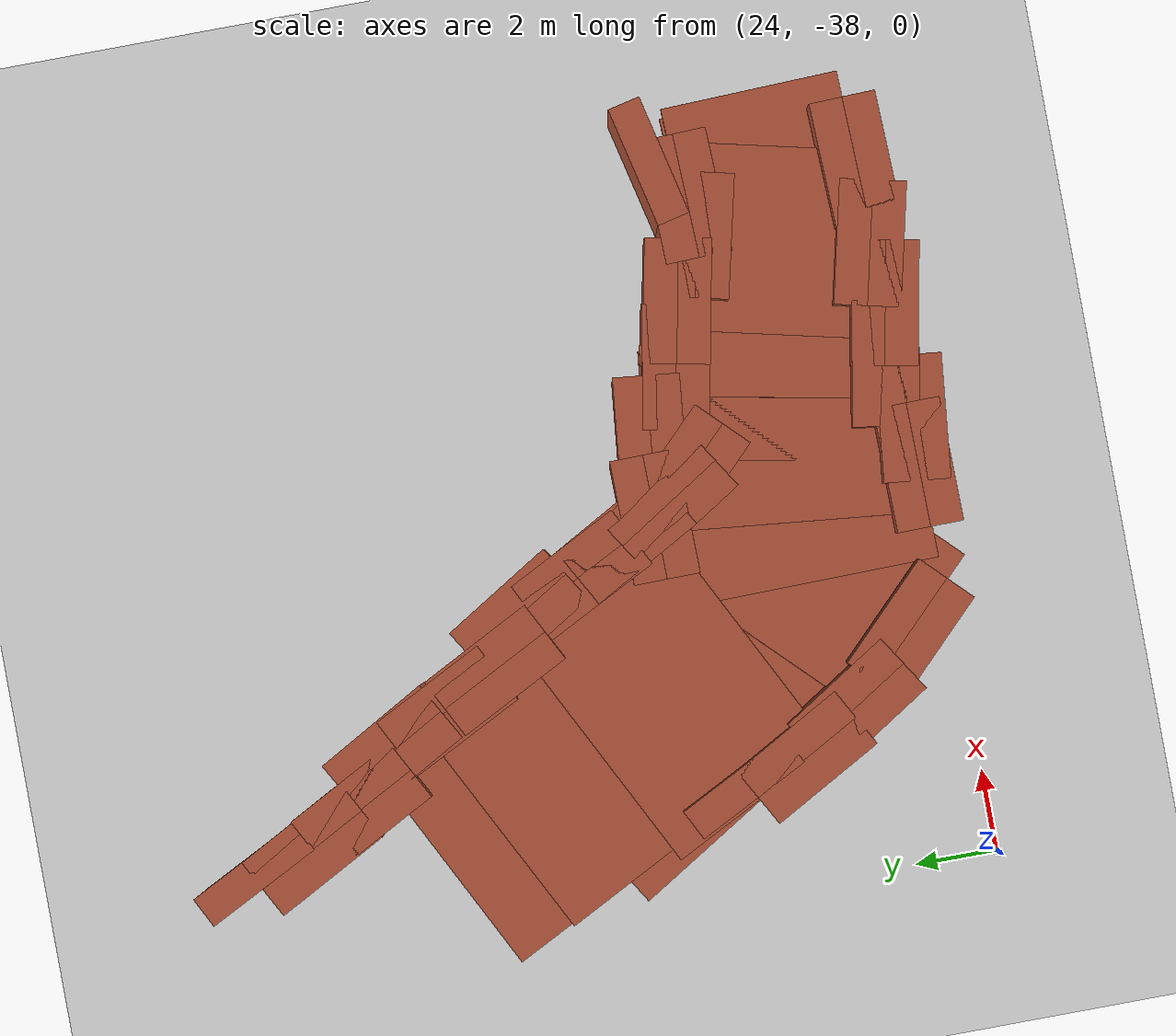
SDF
<sdf version="1.6">
 <world name="procedural_cave_world">
  <include><uri>model://sun</uri></include>
  <include><uri>model://ground_plane</uri></include>
  <model name="procedural_cave">
   <static>true</static>
   <link name="fill_left_23">
    <pose>26.932036066630687 -20.26779416470478 1.5 0 0 -1.1</pose>
    <collision name="collision"><geometry><box><size>3.0 0.8 5.0</size></box></geometry></collision>
    <visual name="visual">
     <geometry><box><size>3.0 0.8 5.0</size></box></geometry>
     <material>
      <script><uri>file://media/materials/scripts/gazebo.material</uri><name>Gazebo/Bricks</name></script>
     </material>
    </visual>
   </link>
   <link name="left_wall_24">
    <pose>26.903741842064512 -21.922781020664537 1.5 0 0 -1.080132154325896</pose>
    <collision name="collision"><geometry><box><size>3.0 0.8 5.0</size></box></geometry></collision>
    <visual name="visual">
     <geometry><box><size>3.0 0.8 5.0</size></box></geometry>
     <material>
      <script><uri>file://media/materials/scripts/gazebo.material</uri><name>Gazebo/Bricks</name></script>
     </material>
    </visual>
   </link>
   <link name="fill_left_24">
    <pose>27.60935791187685 -21.54581157624948 1.5 0 0 -1.080132154325896</pose>
    <collision name="collision"><geometry><box><size>3.0 0.8 5.0</size></box></geometry></collision>
    <visual name="visual">
     <geometry><box><size>3.0 0.8 5.0</size></box></geometry>
     <material>
      <script><uri>file://media/materials/scripts/gazebo.material</uri><name>Gazebo/Bricks</name></script>
     </material>
    </visual>
   </link>
   <link name="left_wall_25">
    <pose>27.63938718959602 -23.235862691191357 1.5 0 0 -1.0826308138403768</pose>
    <collision name="collision"><geometry><box><size>3.0 0.8 5.0</size></box></geometry></collision>
    <visual name="visual">
     <geometry><box><size>3.0 0.8 5.0</size></box></geometry>
     <material>
      <script><uri>file://media/materials/scripts/gazebo.material</uri><name>Gazebo/Bricks</name></script>
     </material>
    </visual>
   </link>
   <link name="fill_left_25">
    <pose>28.345942974032162 -22.860657516014054 1.5 0 0 -1.0826308138403768</pose>
    <collision name="collision"><geometry><box><size>3.0 0.8 5.0</size></box></geometry></collision>
    <visual name="visual">
     <geometry><box><size>3.0 0.8 5.0</size></box></geometry>
     <material>
      <script><uri>file://media/materials/scripts/gazebo.material</uri><name>Gazebo/Bricks</name></script>
     </material>
    </visual>
   </link>
   <link name="left_wall_26">
    <pose>28.8562329743785 -24.21798552494969 1.5 0 0 -1.0581000183696452</pose>
    <collision name="collision"><geometry><box><size>3.0 0.8 5.0</size></box></geometry></collision>
    <visual name="visual">
     <geometry><box><size>3.0 0.8 5.0</size></box></geometry>
     <material>
      <script><uri>file://media/materials/scripts/gazebo.material</uri><name>Gazebo/Bricks</name></script>
     </material>
    </visual>
   </link>
   <link name="fill_left_26">
    <pose>29.553373022664882 -23.82556259866319 1.5 0 0 -1.0581000183696452</pose>
    <collision name="collision"><geometry><box><size>3.0 0.8 5.0</size></box></geometry></collision>
    <visual name="visual">
     <geometry><box><size>3.0 0.8 5.0</size></box></geometry>
     <material>
      <script><uri>file://media/materials/scripts/gazebo.material</uri><name>Gazebo/Bricks</name></script>
     </material>
    </visual>
   </link>
   <link name="left_wall_27">
    <pose>29.5595926995758 -25.660828271721112 1.5 0 0 -1.1</pose>
    <collision name="collision"><geometry><box><size>3.0 0.8 5.0</size></box></geometry></collision>
    <visual name="visual">
     <geometry><box><size>3.0 0.8 5.0</size></box></geometry>
     <material>
      <script><uri>file://media/materials/scripts/gazebo.material</uri><name>Gazebo/Bricks</name></script>
     </material>
    </visual>
   </link>
   <link name="fill_left_27">
    <pose>30.272558587624946 -25.297951374580652 1.5 0 0 -1.1</pose>
    <collision name="collision"><geometry><box><size>3.0 0.8 5.0</size></box></geometry></collision>
    <visual name="visual">
     <geometry><box><size>3.0 0.8 5.0</size></box></geometry>
     <material>
      <script><uri>file://media/materials/scripts/gazebo.material</uri><name>Gazebo/Bricks</name></script>
     </material>
    </visual>
   </link>
   <link name="ceiling_27">
    <pose>27.35402831570251 -26.783390197163865 3.2580101325093014 0 0 -1.1</pose>
    <collision name="collision"><geometry><box><size>4.5 5.949609894876199 0.2</size></box></geometry></collision>
    <visual name="visual">
     <geometry><box><size>4.5 5.949609894876199 0.2</size></box></geometry>
     <material>
      <script><uri>file://media/materials/scripts/gazebo.material</uri><name>Gazebo/Bricks</name></script>
     </material>
    </visual>
   </link>
   <link name="floor_27">
    <pose>27.35402831570251 -26.783390197163865 0.1066784219692117 0 0 -1.1</pose>
    <collision name="collision"><geometry><box><size>4.5 5.949609894876199 0.2</size></box></geometry></collision>
    <visual name="visual">
     <geometry><box><size>4.5 5.949609894876199 0.2</size></box></geometry>
     <material>
      <script><uri>file://media/materials/scripts/gazebo.material</uri><name>Gazebo/Bricks</name></script>
     </material>
    </visual>
   </link>
   <link name="left_wall_28">
    <pose>30.30299372516277 -26.95112771901891 1.5 0 0 -1.0949488383519181</pose>
    <collision name="collision"><geometry><box><size>3.0 0.8 5.0</size></box></geometry></collision>
    <visual name="visual">
     <geometry><box><size>3.0 0.8 5.0</size></box></geometry>
     <material>
      <script><uri>file://media/materials/scripts/gazebo.material</uri><name>Gazebo/Bricks</name></script>
     </material>
    </visual>
   </link>
   <link name="fill_left_28">
    <pose>31.014117575770577 -26.584654160495607 1.5 0 0 -1.0949488383519181</pose>
    <collision name="collision"><geometry><box><size>3.0 0.8 5.0</size></box></geometry></collision>
    <visual name="visual">
     <geometry><box><size>3.0 0.8 5.0</size></box></geometry>
     <material>
      <script><uri>file://media/materials/scripts/gazebo.material</uri><name>Gazebo/Bricks</name></script>
     </material>
    </visual>
   </link>
   <link name="ceiling_28">
    <pose>28.0411662379337 -28.116747417053492 3.314806079505581 0 0 -1.0949488383519181</pose>
    <collision name="collision"><geometry><box><size>4.5 6.089020676881243 0.2</size></box></geometry></collision>
    <visual name="visual">
     <geometry><box><size>4.5 6.089020676881243 0.2</size></box></geometry>
     <material>
      <script><uri>file://media/materials/scripts/gazebo.material</uri><name>Gazebo/Bricks</name></script>
     </material>
    </visual>
   </link>
   <link name="floor_28">
    <pose>28.0411662379337 -28.116747417053492 0.10400705318152703 0 0 -1.0949488383519181</pose>
    <collision name="collision"><geometry><box><size>4.5 6.089020676881243 0.2</size></box></geometry></collision>
    <visual name="visual">
     <geometry><box><size>4.5 6.089020676881243 0.2</size></box></geometry>
     <material>
      <script><uri>file://media/materials/scripts/gazebo.material</uri><name>Gazebo/Bricks</name></script>
     </material>
    </visual>
   </link>
   <link name="left_wall_29">
    <pose>31.478518944601763 -27.76833989277283 1.5 0 0 -1.020678863927704</pose>
    <collision name="collision"><geometry><box><size>3.0 0.8 5.0</size></box></geometry></collision>
    <visual name="visual">
     <geometry><box><size>3.0 0.8 5.0</size></box></geometry>
     <material>
      <script><uri>file://media/materials/scripts/gazebo.material</uri><name>Gazebo/Bricks</name></script>
     </material>
    </visual>
   </link>
   <link name="fill_left_29">
    <pose>32.16048944047195 -27.350110000533434 1.5 0 0 -1.020678863927704</pose>
    <collision name="collision"><geometry><box><size>3.0 0.8 5.0</size></box></geometry></collision>
    <visual name="visual">
     <geometry><box><size>3.0 0.8 5.0</size></box></geometry>
     <material>
      <script><uri>file://media/materials/scripts/gazebo.material</uri><name>Gazebo/Bricks</name></script>
     </material>
    </visual>
   </link>
   <link name="ceiling_29">
    <pose>28.82534728588257 -29.395442096810083 3.314806079505581 0 0 -1.020678863927704</pose>
    <collision name="collision"><geometry><box><size>4.5 7.22471892795607 0.2</size></box></geometry></collision>
    <visual name="visual">
     <geometry><box><size>4.5 7.22471892795607 0.2</size></box></geometry>
     <material>
      <script><uri>file://media/materials/scripts/gazebo.material</uri><name>Gazebo/Bricks</name></script>
     </material>
    </visual>
   </link>
   <link name="floor_29">
    <pose>28.82534728588257 -29.395442096810083 0.10240423190891622 0 0 -1.020678863927704</pose>
    <collision name="collision"><geometry><box><size>4.5 7.22471892795607 0.2</size></box></geometry></collision>
    <visual name="visual">
     <geometry><box><size>4.5 7.22471892795607 0.2</size></box></geometry>
     <material>
      <script><uri>file://media/materials/scripts/gazebo.material</uri><name>Gazebo/Bricks</name></script>
     </material>
    </visual>
   </link>
   <link name="left_wall_30">
    <pose>32.15032416096097 -29.386244894528527 1.5 0 0 -1.1</pose>
    <collision name="collision"><geometry><box><size>3.0 0.8 5.0</size></box></geometry></collision>
    <visual name="visual">
     <geometry><box><size>3.0 0.8 5.0</size></box></geometry>
     <material>
      <script><uri>file://media/materials/scripts/gazebo.material</uri><name>Gazebo/Bricks</name></script>
     </material>
    </visual>
   </link>
   <link name="right_wall_30">
    <pose>26.861158775080902 -32.07826137927595 1.5 0 0 -1.1</pose>
    <collision name="collision"><geometry><box><size>3.0 0.8 5.0</size></box></geometry></collision>
    <visual name="visual">
     <geometry><box><size>3.0 0.8 5.0</size></box></geometry>
     <material>
      <script><uri>file://media/materials/scripts/gazebo.material</uri><name>Gazebo/Bricks</name></script>
     </material>
    </visual>
   </link>
   <link name="fill_left_30">
    <pose>32.86329004901012 -29.023367997388064 1.5 0 0 -1.1</pose>
    <collision name="collision"><geometry><box><size>3.0 0.8 5.0</size></box></geometry></collision>
    <visual name="visual">
     <geometry><box><size>3.0 0.8 5.0</size></box></geometry>
     <material>
      <script><uri>file://media/materials/scripts/gazebo.material</uri><name>Gazebo/Bricks</name></script>
     </material>
    </visual>
   </link>
   <link name="ceiling_30">
    <pose>29.505741468020936 -30.732253136902237 3.348883647703349 0 0 -1.1</pose>
    <collision name="collision"><geometry><box><size>4.5 6.934831356773643 0.2</size></box></geometry></collision>
    <visual name="visual">
     <geometry><box><size>4.5 6.934831356773643 0.2</size></box></geometry>
     <material>
      <script><uri>file://media/materials/scripts/gazebo.material</uri><name>Gazebo/Bricks</name></script>
     </material>
    </visual>
   </link>
   <link name="floor_30">
    <pose>29.505741468020936 -30.732253136902237 0.10144253914534973 0 0 -1.1</pose>
    <collision name="collision"><geometry><box><size>4.5 6.934831356773643 0.2</size></box></geometry></collision>
    <visual name="visual">
     <geometry><box><size>4.5 6.934831356773643 0.2</size></box></geometry>
     <material>
      <script><uri>file://media/materials/scripts/gazebo.material</uri><name>Gazebo/Bricks</name></script>
     </material>
    </visual>
   </link>
   <link name="left_wall_31">
    <pose>32.83592043621047 -30.60323145402377 1.5 0 0 -1.065208005046285</pose>
    <collision name="collision"><geometry><box><size>3.0 0.8 5.0</size></box></geometry></collision>
    <visual name="visual">
     <geometry><box><size>3.0 0.8 5.0</size></box></geometry>
     <material>
      <script><uri>file://media/materials/scripts/gazebo.material</uri><name>Gazebo/Bricks</name></script>
     </material>
    </visual>
   </link>
   <link name="right_wall_31">
    <pose>27.62852922206064 -33.485943885414386 1.5 0 0 -1.065208005046285</pose>
    <collision name="collision"><geometry><box><size>3.0 0.8 5.0</size></box></geometry></collision>
    <visual name="visual">
     <geometry><box><size>3.0 0.8 5.0</size></box></geometry>
     <material>
      <script><uri>file://media/materials/scripts/gazebo.material</uri><name>Gazebo/Bricks</name></script>
     </material>
    </visual>
   </link>
   <link name="fill_left_31">
    <pose>33.535832187046125 -30.215773661429306 1.5 0 0 -1.065208005046285</pose>
    <collision name="collision"><geometry><box><size>3.0 0.8 5.0</size></box></geometry></collision>
    <visual name="visual">
     <geometry><box><size>3.0 0.8 5.0</size></box></geometry>
     <material>
      <script><uri>file://media/materials/scripts/gazebo.material</uri><name>Gazebo/Bricks</name></script>
     </material>
    </visual>
   </link>
   <link name="fill_right_31">
    <pose>26.92861747122499 -33.87340167800885 1.5 0 0 -1.065208005046285</pose>
    <collision name="collision"><geometry><box><size>3.0 0.8 5.0</size></box></geometry></collision>
    <visual name="visual">
     <geometry><box><size>3.0 0.8 5.0</size></box></geometry>
     <material>
      <script><uri>file://media/materials/scripts/gazebo.material</uri><name>Gazebo/Bricks</name></script>
     </material>
    </visual>
   </link>
   <link name="ceiling_31">
    <pose>30.232224829135557 -32.04458766971908 2.045461689374546 0 0 -1.065208005046285</pose>
    <collision name="collision"><geometry><box><size>4.5 6.952054621666277 0.2</size></box></geometry></collision>
    <visual name="visual">
     <geometry><box><size>4.5 6.952054621666277 0.2</size></box></geometry>
     <material>
      <script><uri>file://media/materials/scripts/gazebo.material</uri><name>Gazebo/Bricks</name></script>
     </material>
    </visual>
   </link>
   <link name="floor_31">
    <pose>30.232224829135557 -32.04458766971908 0.10014425391453498 0 0 -1.065208005046285</pose>
    <collision name="collision"><geometry><box><size>4.5 6.952054621666277 0.2</size></box></geometry></collision>
    <visual name="visual">
     <geometry><box><size>4.5 6.952054621666277 0.2</size></box></geometry>
     <material>
      <script><uri>file://media/materials/scripts/gazebo.material</uri><name>Gazebo/Bricks</name></script>
     </material>
    </visual>
   </link>
   <link name="left_wall_32">
    <pose>33.4726057267246 -31.767615525674433 1.5 0 0 -1.0061511076324017</pose>
    <collision name="collision"><geometry><box><size>3.0 0.8 5.0</size></box></geometry></collision>
    <visual name="visual">
     <geometry><box><size>3.0 0.8 5.0</size></box></geometry>
     <material>
      <script><uri>file://media/materials/scripts/gazebo.material</uri><name>Gazebo/Bricks</name></script>
     </material>
    </visual>
   </link>
   <link name="right_wall_32">
    <pose>28.597192346957176 -34.855895321374845 1.5 0 0 -1.0061511076324017</pose>
    <collision name="collision"><geometry><box><size>3.0 0.8 5.0</size></box></geometry></collision>
    <visual name="visual">
     <geometry><box><size>3.0 0.8 5.0</size></box></geometry>
     <material>
      <script><uri>file://media/materials/scripts/gazebo.material</uri><name>Gazebo/Bricks</name></script>
     </material>
    </visual>
   </link>
   <link name="fill_left_32">
    <pose>34.14842852875423 -31.339522614898257 1.5 0 0 -1.0061511076324017</pose>
    <collision name="collision"><geometry><box><size>3.0 0.8 5.0</size></box></geometry></collision>
    <visual name="visual">
     <geometry><box><size>3.0 0.8 5.0</size></box></geometry>
     <material>
      <script><uri>file://media/materials/scripts/gazebo.material</uri><name>Gazebo/Bricks</name></script>
     </material>
    </visual>
   </link>
   <link name="fill_right_32">
    <pose>27.921369544927543 -35.28398823215102 1.5 0 0 -1.0061511076324017</pose>
    <collision name="collision"><geometry><box><size>3.0 0.8 5.0</size></box></geometry></collision>
    <visual name="visual">
     <geometry><box><size>3.0 0.8 5.0</size></box></geometry>
     <material>
      <script><uri>file://media/materials/scripts/gazebo.material</uri><name>Gazebo/Bricks</name></script>
     </material>
    </visual>
   </link>
   <link name="ceiling_32">
    <pose>31.034899036840887 -33.31175542352464 2.587277013624728 0 0 -1.0061511076324017</pose>
    <collision name="collision"><geometry><box><size>4.5 6.771232772999767 0.2</size></box></geometry></collision>
    <visual name="visual">
     <geometry><box><size>4.5 6.771232772999767 0.2</size></box></geometry>
     <material>
      <script><uri>file://media/materials/scripts/gazebo.material</uri><name>Gazebo/Bricks</name></script>
     </material>
    </visual>
   </link>
   <link name="floor_32">
    <pose>31.034899036840887 -33.31175542352464 0.10008655234872099 0 0 -1.0061511076324017</pose>
    <collision name="collision"><geometry><box><size>4.5 6.771232772999767 0.2</size></box></geometry></collision>
    <visual name="visual">
     <geometry><box><size>4.5 6.771232772999767 0.2</size></box></geometry>
     <material>
      <script><uri>file://media/materials/scripts/gazebo.material</uri><name>Gazebo/Bricks</name></script>
     </material>
    </visual>
   </link>
   <link name="left_wall_33">
    <pose>34.09836089914805 -32.37268325207957 1.5 0 0 -0.7861648584952085</pose>
    <collision name="collision"><geometry><box><size>3.0 0.8 5.0</size></box></geometry></collision>
    <visual name="visual">
     <geometry><box><size>3.0 0.8 5.0</size></box></geometry>
     <material>
      <script><uri>file://media/materials/scripts/gazebo.material</uri><name>Gazebo/Bricks</name></script>
     </material>
    </visual>
   </link>
   <link name="right_wall_33">
    <pose>30.09113048886583 -36.373773720799505 1.5 0 0 -0.7861648584952085</pose>
    <collision name="collision"><geometry><box><size>3.0 0.8 5.0</size></box></geometry></collision>
    <visual name="visual">
     <geometry><box><size>3.0 0.8 5.0</size></box></geometry>
     <material>
      <script><uri>file://media/materials/scripts/gazebo.material</uri><name>Gazebo/Bricks</name></script>
     </material>
    </visual>
   </link>
   <link name="fill_left_33">
    <pose>34.664479866036 -31.807431701591007 1.5 0 0 -0.7861648584952085</pose>
    <collision name="collision"><geometry><box><size>3.0 0.8 5.0</size></box></geometry></collision>
    <visual name="visual">
     <geometry><box><size>3.0 0.8 5.0</size></box></geometry>
     <material>
      <script><uri>file://media/materials/scripts/gazebo.material</uri><name>Gazebo/Bricks</name></script>
     </material>
    </visual>
   </link>
   <link name="fill_right_33">
    <pose>29.52501152197788 -36.93902527128807 1.5 0 0 -0.7861648584952085</pose>
    <collision name="collision"><geometry><box><size>3.0 0.8 5.0</size></box></geometry></collision>
    <visual name="visual">
     <geometry><box><size>3.0 0.8 5.0</size></box></geometry>
     <material>
      <script><uri>file://media/materials/scripts/gazebo.material</uri><name>Gazebo/Bricks</name></script>
     </material>
    </visual>
   </link>
   <link name="ceiling_33">
    <pose>32.09474569400694 -34.37322848643954 2.9123662081748365 0 0 -0.7861648584952085</pose>
    <collision name="collision"><geometry><box><size>4.5 6.66273966379986 0.2</size></box></geometry></collision>
    <visual name="visual">
     <geometry><box><size>4.5 6.66273966379986 0.2</size></box></geometry>
     <material>
      <script><uri>file://media/materials/scripts/gazebo.material</uri><name>Gazebo/Bricks</name></script>
     </material>
    </visual>
   </link>
   <link name="floor_33">
    <pose>32.09474569400694 -34.37322848643954 0.10005193140923259 0 0 -0.7861648584952085</pose>
    <collision name="collision"><geometry><box><size>4.5 6.66273966379986 0.2</size></box></geometry></collision>
    <visual name="visual">
     <geometry><box><size>4.5 6.66273966379986 0.2</size></box></geometry>
     <material>
      <script><uri>file://media/materials/scripts/gazebo.material</uri><name>Gazebo/Bricks</name></script>
     </material>
    </visual>
   </link>
   <link name="left_wall_34">
    <pose>33.55600100441066 -31.562575762615385 1.5 0 0 0.013835141504791593</pose>
    <collision name="collision"><geometry><box><size>3.0 0.8 5.0</size></box></geometry></collision>
    <visual name="visual">
     <geometry><box><size>3.0 0.8 5.0</size></box></geometry>
     <material>
      <script><uri>file://media/materials/scripts/gazebo.material</uri><name>Gazebo/Bricks</name></script>
     </material>
    </visual>
   </link>
   <link name="right_wall_34">
    <pose>33.63320327147228 -37.14237710983676 1.5 0 0 0.013835141504791593</pose>
    <collision name="collision"><geometry><box><size>3.0 0.8 5.0</size></box></geometry></collision>
    <visual name="visual">
     <geometry><box><size>3.0 0.8 5.0</size></box></geometry>
     <material>
      <script><uri>file://media/materials/scripts/gazebo.material</uri><name>Gazebo/Bricks</name></script>
     </material>
    </visual>
   </link>
   <link name="fill_left_34">
    <pose>33.544933244296814 -30.7626523258503 1.5 0 0 0.013835141504791593</pose>
    <collision name="collision"><geometry><box><size>3.0 0.8 5.0</size></box></geometry></collision>
    <visual name="visual">
     <geometry><box><size>3.0 0.8 5.0</size></box></geometry>
     <material>
      <script><uri>file://media/materials/scripts/gazebo.material</uri><name>Gazebo/Bricks</name></script>
     </material>
    </visual>
   </link>
   <link name="fill_right_34">
    <pose>33.64427103158613 -37.942300546601835 1.5 0 0 0.013835141504791593</pose>
    <collision name="collision"><geometry><box><size>3.0 0.8 5.0</size></box></geometry></collision>
    <visual name="visual">
     <geometry><box><size>3.0 0.8 5.0</size></box></geometry>
     <material>
      <script><uri>file://media/materials/scripts/gazebo.material</uri><name>Gazebo/Bricks</name></script>
     </material>
    </visual>
   </link>
   <link name="ceiling_34">
    <pose>33.59460213794147 -34.35247643622607 3.107419724904902 0 0 0.013835141504791593</pose>
    <collision name="collision"><geometry><box><size>4.5 6.580335407884805 0.2</size></box></geometry></collision>
    <visual name="visual">
     <geometry><box><size>4.5 6.580335407884805 0.2</size></box></geometry>
     <material>
      <script><uri>file://media/materials/scripts/gazebo.material</uri><name>Gazebo/Bricks</name></script>
     </material>
    </visual>
   </link>
   <link name="floor_34">
    <pose>33.59460213794147 -34.35247643622607 0.10003115884553956 0 0 0.013835141504791593</pose>
    <collision name="collision"><geometry><box><size>4.5 6.580335407884805 0.2</size></box></geometry></collision>
    <visual name="visual">
     <geometry><box><size>4.5 6.580335407884805 0.2</size></box></geometry>
     <material>
      <script><uri>file://media/materials/scripts/gazebo.material</uri><name>Gazebo/Bricks</name></script>
     </material>
    </visual>
   </link>
   <link name="left_wall_35">
    <pose>35.36895618886256 -31.803181548685064 1.5 0 0 -0.10404338566855457</pose>
    <collision name="collision"><geometry><box><size>3.0 0.8 5.0</size></box></geometry></collision>
    <visual name="visual">
     <geometry><box><size>3.0 0.8 5.0</size></box></geometry>
     <material>
      <script><uri>file://media/materials/scripts/gazebo.material</uri><name>Gazebo/Bricks</name></script>
     </material>
    </visual>
   </link>
   <link name="right_wall_35">
    <pose>34.80402519023273 -37.21333864930962 1.5 0 0 -0.10404338566855457</pose>
    <collision name="collision"><geometry><box><size>3.0 0.8 5.0</size></box></geometry></collision>
    <visual name="visual">
     <geometry><box><size>3.0 0.8 5.0</size></box></geometry>
     <material>
      <script><uri>file://media/materials/scripts/gazebo.material</uri><name>Gazebo/Bricks</name></script>
     </material>
    </visual>
   </link>
   <link name="fill_left_35">
    <pose>35.452040809007244 -31.007507654495104 1.5 0 0 -0.10404338566855457</pose>
    <collision name="collision"><geometry><box><size>3.0 0.8 5.0</size></box></geometry></collision>
    <visual name="visual">
     <geometry><box><size>3.0 0.8 5.0</size></box></geometry>
     <material>
      <script><uri>file://media/materials/scripts/gazebo.material</uri><name>Gazebo/Bricks</name></script>
     </material>
    </visual>
   </link>
   <link name="fill_right_35">
    <pose>34.72094057008805 -38.00901254349957 1.5 0 0 -0.10404338566855457</pose>
    <collision name="collision"><geometry><box><size>3.0 0.8 5.0</size></box></geometry></collision>
    <visual name="visual">
     <geometry><box><size>3.0 0.8 5.0</size></box></geometry>
     <material>
      <script><uri>file://media/materials/scripts/gazebo.material</uri><name>Gazebo/Bricks</name></script>
     </material>
    </visual>
   </link>
   <link name="ceiling_35">
    <pose>35.086490689547645 -34.50826009899734 3.224451834942941 0 0 -0.10404338566855457</pose>
    <collision name="collision"><geometry><box><size>4.5 6.439572307328138 0.2</size></box></geometry></collision>
    <visual name="visual">
     <geometry><box><size>4.5 6.439572307328138 0.2</size></box></geometry>
     <material>
      <script><uri>file://media/materials/scripts/gazebo.material</uri><name>Gazebo/Bricks</name></script>
     </material>
    </visual>
   </link>
   <link name="floor_35">
    <pose>35.086490689547645 -34.50826009899734 0.10001869530732374 0 0 -0.10404338566855457</pose>
    <collision name="collision"><geometry><box><size>4.5 6.439572307328138 0.2</size></box></geometry></collision>
    <visual name="visual">
     <geometry><box><size>4.5 6.439572307328138 0.2</size></box></geometry>
     <material>
      <script><uri>file://media/materials/scripts/gazebo.material</uri><name>Gazebo/Bricks</name></script>
     </material>
    </visual>
   </link>
   <link name="left_wall_36">
    <pose>36.91781205847238 -32.6998183389718 1.5 0 0 -0.16950570509807528</pose>
    <collision name="collision"><geometry><box><size>3.0 0.8 5.0</size></box></geometry></collision>
    <visual name="visual">
     <geometry><box><size>3.0 0.8 5.0</size></box></geometry>
     <material>
      <script><uri>file://media/materials/scripts/gazebo.material</uri><name>Gazebo/Bricks</name></script>
     </material>
    </visual>
   </link>
   <link name="right_wall_36">
    <pose>36.21217413805118 -36.82278733570245 1.5 0 0 -0.16950570509807528</pose>
    <collision name="collision"><geometry><box><size>3.0 0.8 5.0</size></box></geometry></collision>
    <visual name="visual">
     <geometry><box><size>3.0 0.8 5.0</size></box></geometry>
     <material>
      <script><uri>file://media/materials/scripts/gazebo.material</uri><name>Gazebo/Bricks</name></script>
     </material>
    </visual>
   </link>
   <link name="fill_left_36">
    <pose>37.05276818558693 -31.91128372099093 1.5 0 0 -0.16950570509807528</pose>
    <collision name="collision"><geometry><box><size>3.0 0.8 5.0</size></box></geometry></collision>
    <visual name="visual">
     <geometry><box><size>3.0 0.8 5.0</size></box></geometry>
     <material>
      <script><uri>file://media/materials/scripts/gazebo.material</uri><name>Gazebo/Bricks</name></script>
     </material>
    </visual>
   </link>
   <link name="fill_right_36">
    <pose>36.07721801093663 -37.61132195368332 1.5 0 0 -0.16950570509807528</pose>
    <collision name="collision"><geometry><box><size>3.0 0.8 5.0</size></box></geometry></collision>
    <visual name="visual">
     <geometry><box><size>3.0 0.8 5.0</size></box></geometry>
     <material>
      <script><uri>file://media/materials/scripts/gazebo.material</uri><name>Gazebo/Bricks</name></script>
     </material>
    </visual>
   </link>
   <link name="ceiling_36">
    <pose>36.56499309826178 -34.76130283733713 3.224451834942941 0 0 -0.16950570509807528</pose>
    <collision name="collision">
     <geometry><box><size>4.5 5.1829174295864915 0.2</size></box></geometry>
    </collision>
    <visual name="visual">
     <geometry><box><size>4.5 5.1829174295864915 0.2</size></box></geometry>
     <material>
      <script><uri>file://media/materials/scripts/gazebo.material</uri><name>Gazebo/Bricks</name></script>
     </material>
    </visual>
   </link>
   <link name="floor_36">
    <pose>36.56499309826178 -34.76130283733713 0.10001121718439425 0 0 -0.16950570509807528</pose>
    <collision name="collision">
     <geometry><box><size>4.5 5.1829174295864915 0.2</size></box></geometry>
    </collision>
    <visual name="visual">
     <geometry><box><size>4.5 5.1829174295864915 0.2</size></box></geometry>
     <material>
      <script><uri>file://media/materials/scripts/gazebo.material</uri><name>Gazebo/Bricks</name></script>
     </material>
    </visual>
   </link>
   <link name="obs_stone_36">
    <pose>36.56499309826178 -33.31774183240853 2.459444653825659 0 0 0.25410097743737253</pose>
    <collision name="collision">
     <geometry><box><size>0.29066881377573595 0.43163452077056574 1.730014362234565</size></box></geometry>
    </collision>
    <visual name="visual">
     <geometry><box><size>0.3442364409108007 0.3147673034360941 1.730014362234565</size></box></geometry>
     <material>
      <script><uri>file://media/materials/scripts/gazebo.material</uri><name>Gazebo/Wood</name></script>
     </material>
    </visual>
   </link>
   <link name="left_wall_37">
    <pose>38.42962490688922 -33.014526292654885 1.5 0 0 -0.19057160972268686</pose>
    <collision name="collision"><geometry><box><size>3.0 0.8 5.0</size></box></geometry></collision>
    <visual name="visual">
     <geometry><box><size>3.0 0.8 5.0</size></box></geometry>
     <material>
      <script><uri>file://media/materials/scripts/gazebo.material</uri><name>Gazebo/Bricks</name></script>
     </material>
    </visual>
   </link>
   <link name="right_wall_37">
    <pose>37.64604965297538 -37.076339943801734 1.5 0 0 -0.19057160972268686</pose>
    <collision name="collision"><geometry><box><size>3.0 0.8 5.0</size></box></geometry></collision>
    <visual name="visual">
     <geometry><box><size>3.0 0.8 5.0</size></box></geometry>
     <material>
      <script><uri>file://media/materials/scripts/gazebo.material</uri><name>Gazebo/Bricks</name></script>
     </material>
    </visual>
   </link>
   <link name="fill_left_37">
    <pose>38.581161056697844 -32.22900939576394 1.5 0 0 -0.19057160972268686</pose>
    <collision name="collision"><geometry><box><size>3.0 0.8 5.0</size></box></geometry></collision>
    <visual name="visual">
     <geometry><box><size>3.0 0.8 5.0</size></box></geometry>
     <material>
      <script><uri>file://media/materials/scripts/gazebo.material</uri><name>Gazebo/Bricks</name></script>
     </material>
    </visual>
   </link>
   <link name="fill_right_37">
    <pose>37.49451350316675 -37.86185684069268 1.5 0 0 -0.19057160972268686</pose>
    <collision name="collision"><geometry><box><size>3.0 0.8 5.0</size></box></geometry></collision>
    <visual name="visual">
     <geometry><box><size>3.0 0.8 5.0</size></box></geometry>
     <material>
      <script><uri>file://media/materials/scripts/gazebo.material</uri><name>Gazebo/Bricks</name></script>
     </material>
    </visual>
   </link>
   <link name="ceiling_37">
    <pose>38.0378372799323 -35.04543311822831 3.2946711009657648 0 0 -0.19057160972268686</pose>
    <collision name="collision">
     <geometry><box><size>4.5 5.1367040400769595 0.2</size></box></geometry>
    </collision>
    <visual name="visual">
     <geometry><box><size>4.5 5.1367040400769595 0.2</size></box></geometry>
     <material>
      <script><uri>file://media/materials/scripts/gazebo.material</uri><name>Gazebo/Bricks</name></script>
     </material>
    </visual>
   </link>
   <link name="floor_37">
    <pose>38.0378372799323 -35.04543311822831 0.10000673031063655 0 0 -0.19057160972268686</pose>
    <collision name="collision">
     <geometry><box><size>4.5 5.1367040400769595 0.2</size></box></geometry>
    </collision>
    <visual name="visual">
     <geometry><box><size>4.5 5.1367040400769595 0.2</size></box></geometry>
     <material>
      <script><uri>file://media/materials/scripts/gazebo.material</uri><name>Gazebo/Bricks</name></script>
     </material>
    </visual>
   </link>
   <link name="left_wall_38">
    <pose>39.87197050682966 -33.77894391313046 1.5 0 0 -0.2282440915338912</pose>
    <collision name="collision"><geometry><box><size>3.0 0.8 5.0</size></box></geometry></collision>
    <visual name="visual">
     <geometry><box><size>3.0 0.8 5.0</size></box></geometry>
     <material>
      <script><uri>file://media/materials/scripts/gazebo.material</uri><name>Gazebo/Bricks</name></script>
     </material>
    </visual>
   </link>
   <link name="right_wall_38">
    <pose>39.12589965739249 -36.99072483501374 1.5 0 0 -0.2282440915338912</pose>
    <collision name="collision"><geometry><box><size>3.0 0.8 5.0</size></box></geometry></collision>
    <visual name="visual">
     <geometry><box><size>3.0 0.8 5.0</size></box></geometry>
     <material>
      <script><uri>file://media/materials/scripts/gazebo.material</uri><name>Gazebo/Bricks</name></script>
     </material>
    </visual>
   </link>
   <link name="fill_left_38">
    <pose>40.052984509946356 -32.99969175196844 1.5 0 0 -0.2282440915338912</pose>
    <collision name="collision"><geometry><box><size>3.0 0.8 5.0</size></box></geometry></collision>
    <visual name="visual">
     <geometry><box><size>3.0 0.8 5.0</size></box></geometry>
     <material>
      <script><uri>file://media/materials/scripts/gazebo.material</uri><name>Gazebo/Bricks</name></script>
     </material>
    </visual>
   </link>
   <link name="fill_right_38">
    <pose>38.944885654275794 -37.76997699617576 1.5 0 0 -0.2282440915338912</pose>
    <collision name="collision"><geometry><box><size>3.0 0.8 5.0</size></box></geometry></collision>
    <visual name="visual">
     <geometry><box><size>3.0 0.8 5.0</size></box></geometry>
     <material>
      <script><uri>file://media/materials/scripts/gazebo.material</uri><name>Gazebo/Bricks</name></script>
     </material>
    </visual>
   </link>
   <link name="ceiling_38">
    <pose>39.498935082111075 -35.3848343740721 3.2946711009657648 0 0 -0.2282440915338912</pose>
    <collision name="collision"><geometry><box><size>4.5 4.297295619527212 0.2</size></box></geometry></collision>
    <visual name="visual">
     <geometry><box><size>4.5 4.297295619527212 0.2</size></box></geometry>
     <material>
      <script><uri>file://media/materials/scripts/gazebo.material</uri><name>Gazebo/Bricks</name></script>
     </material>
    </visual>
   </link>
   <link name="floor_38">
    <pose>39.498935082111075 -35.3848343740721 0.10000403818638193 0 0 -0.2282440915338912</pose>
    <collision name="collision"><geometry><box><size>4.5 4.297295619527212 0.2</size></box></geometry></collision>
    <visual name="visual">
     <geometry><box><size>4.5 4.297295619527212 0.2</size></box></geometry>
     <material>
      <script><uri>file://media/materials/scripts/gazebo.material</uri><name>Gazebo/Bricks</name></script>
     </material>
    </visual>
   </link>
   <link name="left_wall_39">
    <pose>40.94242864555196 -33.672613371974464 1.5 0 0 0.03348055570823566</pose>
    <collision name="collision"><geometry><box><size>3.0 0.8 5.0</size></box></geometry></collision>
    <visual name="visual">
     <geometry><box><size>3.0 0.8 5.0</size></box></geometry>
     <material>
      <script><uri>file://media/materials/scripts/gazebo.material</uri><name>Gazebo/Bricks</name></script>
     </material>
    </visual>
   </link>
   <link name="right_wall_39">
    <pose>41.053760254313964 -36.99663247296779 1.5 0 0 0.03348055570823566</pose>
    <collision name="collision"><geometry><box><size>3.0 0.8 5.0</size></box></geometry></collision>
    <visual name="visual">
     <geometry><box><size>3.0 0.8 5.0</size></box></geometry>
     <material>
      <script><uri>file://media/materials/scripts/gazebo.material</uri><name>Gazebo/Bricks</name></script>
     </material>
    </visual>
   </link>
   <link name="fill_left_39">
    <pose>40.91564920469811 -32.873061709136124 1.5 0 0 0.03348055570823566</pose>
    <collision name="collision"><geometry><box><size>3.0 0.8 5.0</size></box></geometry></collision>
    <visual name="visual">
     <geometry><box><size>3.0 0.8 5.0</size></box></geometry>
     <material>
      <script><uri>file://media/materials/scripts/gazebo.material</uri><name>Gazebo/Bricks</name></script>
     </material>
    </visual>
   </link>
   <link name="fill_right_39">
    <pose>41.080539695167815 -37.79618413580613 1.5 0 0 0.03348055570823566</pose>
    <collision name="collision"><geometry><box><size>3.0 0.8 5.0</size></box></geometry></collision>
    <visual name="visual">
     <geometry><box><size>3.0 0.8 5.0</size></box></geometry>
     <material>
      <script><uri>file://media/materials/scripts/gazebo.material</uri><name>Gazebo/Bricks</name></script>
     </material>
    </visual>
   </link>
   <link name="ceiling_39">
    <pose>40.998094449932964 -35.33462292247113 2.7325772908850654 0 0 0.03348055570823566</pose>
    <collision name="collision"><geometry><box><size>4.5 4.325882997172032 0.2</size></box></geometry></collision>
    <visual name="visual">
     <geometry><box><size>4.5 4.325882997172032 0.2</size></box></geometry>
     <material>
      <script><uri>file://media/materials/scripts/gazebo.material</uri><name>Gazebo/Bricks</name></script>
     </material>
    </visual>
   </link>
   <link name="floor_39">
    <pose>40.998094449932964 -35.33462292247113 0.45736044668029163 0 0 0.03348055570823566</pose>
    <collision name="collision"><geometry><box><size>4.5 4.325882997172032 0.2</size></box></geometry></collision>
    <visual name="visual">
     <geometry><box><size>4.5 4.325882997172032 0.2</size></box></geometry>
     <material>
      <script><uri>file://media/materials/scripts/gazebo.material</uri><name>Gazebo/Bricks</name></script>
     </material>
    </visual>
   </link>
   <link name="fill_left_40">
    <pose>41.89773540233902 -32.5523501216106 1.5 0 0 0.22591309134500118</pose>
    <collision name="collision"><geometry><box><size>3.0 0.8 5.0</size></box></geometry></collision>
    <visual name="visual">
     <geometry><box><size>3.0 0.8 5.0</size></box></geometry>
     <material>
      <script><uri>file://media/materials/scripts/gazebo.material</uri><name>Gazebo/Bricks</name></script>
     </material>
    </visual>
   </link>
  </model>
 </world>
</sdf>
